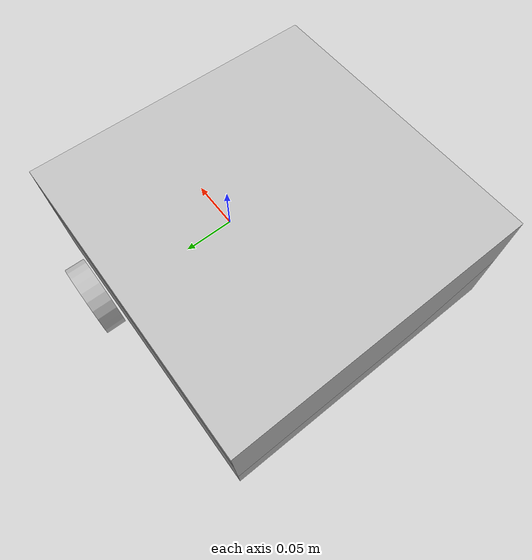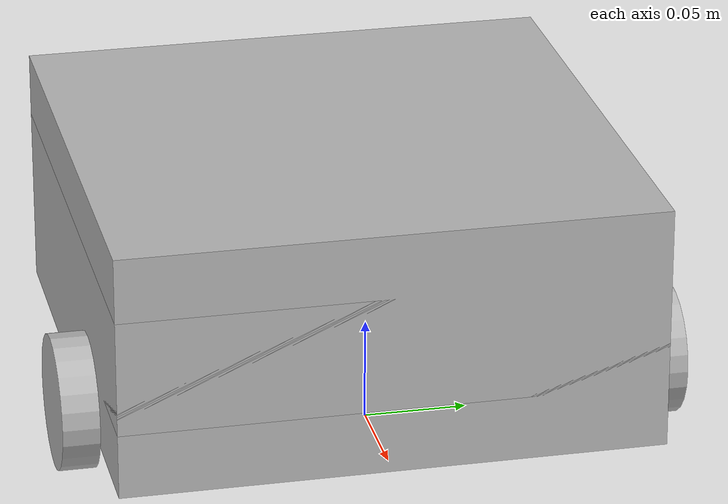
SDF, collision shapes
<?xml version="1.0" ?>
<sdf version="1.5">
  <model name="people">
  <pose>0.0 0.0 0.0 0.0 0.0 0.0</pose>

    <link name="base_footprint"/>
    <link name="base_link">
      <inertial>
        <pose>-0.064 0 0.048 0 0 0</pose>
        <inertia>
          <ixx>4.2111447e-02</ixx>
          <ixy>0</ixy>
          <ixz>0</ixz>
          <iyy>4.2111447e-02</iyy>
          <iyz>0</iyz>
          <izz>7.5254874e-02</izz>
        </inertia>
        <mass>1.3729096e+00</mass>
      </inertial>
      <collision name="base_collision">
        <pose>-0.064 0 0.048 0 0 0</pose>
        <geometry>
          <box>
            <size>0.265 0.265 0.089</size>
          </box>
        </geometry>
      </collision>
      <visual name="base_visual">
        <pose>-0.064 0 0 0 0 1.57</pose>
        <geometry>
          <mesh>
            <uri>model://people/model.dae</uri>
            <scale>0.5 0.5 0.5</scale>
          </mesh>
        </geometry>
      </visual>
    </link>

    <link name="base_link2">
      <inertial>
        <pose>-0.064 0 0.08 0 0 0</pose>
        <inertia>
          <ixx>4.2111447e-02</ixx>
          <ixy>0</ixy>
          <ixz>0</ixz>
          <iyy>4.2111447e-02</iyy>
          <iyz>0</iyz>
          <izz>7.5254874e-02</izz>
        </inertia>
        <mass>1.3729096e+00</mass>
      </inertial>
      <collision name="base2_collision">
        <pose>-0.064 0 0.08 0 0 0</pose>
        <geometry>
          <box>
            <size>0.265 0.265 0.089</size>
          </box>
        </geometry>
      </collision>
      <visual name="base2_visual">
        <pose>-0.064 0 0.08 0 0 0</pose>
        <geometry>
          <mesh>
          </mesh>
        </geometry>
      </visual>
    </link>

    <!-- Wheels -->

    <link name="wheel_left_link">
      <inertial>
        <pose>0.0 0.144 0.023 -1.57 0 0</pose>
        <inertia>
          <ixx>1.1175580e-05</ixx>
          <ixy>-4.2369783e-11</ixy>
          <ixz>-5.9381719e-09</ixz>
          <iyy>1.1192413e-05</iyy>
          <iyz>-1.4400107e-11</iyz>
          <izz>2.0712558e-05</izz>
        </inertia>
        <mass>0.1</mass>
      </inertial>
      <collision name="wheel_left_collision">
        <pose>0.0 0.144 0.023 -1.57 0 0</pose>
        <geometry>
          <cylinder>
            <radius>0.033</radius>
            <length>0.018</length>
          </cylinder>
        </geometry>
        <surface>
          <!-- This friction pamareter don't contain reliable data!! -->
          <friction>
            <ode>
              <mu>100000.0</mu>
              <mu2>100000.0</mu2>
              <fdir1>0 0 0</fdir1>
              <slip1>0.0</slip1>
              <slip2>0.0</slip2>
            </ode>
          </friction>
          <contact>
            <ode>
              <soft_cfm>0</soft_cfm>
              <soft_erp>0.2</soft_erp>
              <kp>1e+5</kp>
              <kd>1</kd>
              <max_vel>0.01</max_vel>
              <min_depth>0.001</min_depth>
            </ode>
          </contact>
        </surface>
      </collision>
      <visual name="wheel_left_visual">
        <pose>0.0 0.144 0.023 0 0 0</pose>
        <geometry>
          <mesh>
          </mesh>
        </geometry>
      </visual>
    </link>

    <link name="wheel_right_link">
      <inertial>
        <pose>0.0 -0.144 0.023 -1.57 0 0</pose>
        <inertia>
          <ixx>1.1175580e-05</ixx>
          <ixy>-4.2369783e-11</ixy>
          <ixz>-5.9381719e-09</ixz>
          <iyy>1.1192413e-05</iyy>
          <iyz>-1.4400107e-11</iyz>
          <izz>2.0712558e-05</izz>
        </inertia>
        <mass>0.1</mass>
      </inertial>
      <collision name="wheel_right_collision">
        <pose>0.0 -0.144 0.023 -1.57 0 0</pose>
        <geometry>
          <cylinder>
            <radius>0.033</radius>
            <length>0.018</length>
          </cylinder>
        </geometry>
        <surface>
          <!-- This friction pamareter don't contain reliable data!! -->
          <friction>
            <ode>
              <mu>100000.0</mu>
              <mu2>100000.0</mu2>
              <fdir1>0 0 0</fdir1>
              <slip1>0.0</slip1>
              <slip2>0.0</slip2>
            </ode>
          </friction>
          <contact>
            <ode>
              <soft_cfm>0</soft_cfm>
              <soft_erp>0.2</soft_erp>
              <kp>1e+5</kp>
              <kd>1</kd>
              <max_vel>0.01</max_vel>
              <min_depth>0.001</min_depth>
            </ode>
          </contact>
        </surface>
      </collision>
      <visual name="wheel_right_visual">
        <pose>0.0 -0.144 0.023 0 0 0</pose>
        <geometry>
          <mesh>
          </mesh>
        </geometry>
      </visual>
    </link>

    <!-- Caster -->

    <link name='caster_back_right_link'>
      <pose>-0.177 -0.064 -0.004 -1.57 0 0</pose>
      <inertial>
        <mass>0.001</mass>
        <inertia>
          <ixx>0.00001</ixx>
          <ixy>0.000</ixy>
          <ixz>0.000</ixz>
          <iyy>0.00001</iyy>
          <iyz>0.000</iyz>
          <izz>0.00001</izz>
        </inertia>
      </inertial>
      <collision name='collision'>
        <geometry>
          <sphere>
            <radius>0.005000</radius>
          </sphere>
        </geometry>
        <surface>
          <contact>
            <ode>
              <soft_cfm>0</soft_cfm>
              <soft_erp>0.2</soft_erp>
              <kp>1e+5</kp>
              <kd>1</kd>
              <max_vel>0.01</max_vel>
              <min_depth>0.001</min_depth>
            </ode>
          </contact>
        </surface>
      </collision>
    </link>

    <link name='caster_back_left_link'>
      <pose>-0.177 0.064 -0.004 -1.57 0 0</pose>
      <inertial>
        <mass>0.001</mass>
        <inertia>
          <ixx>0.00001</ixx>
          <ixy>0.000</ixy>
          <ixz>0.000</ixz>
          <iyy>0.00001</iyy>
          <iyz>0.000</iyz>
          <izz>0.00001</izz>
        </inertia>
      </inertial>
      <collision name='collision'>
        <geometry>
          <sphere>
            <radius>0.005000</radius>
          </sphere>
        </geometry>
        <surface>
          <contact>
            <ode>
              <soft_cfm>0</soft_cfm>
              <soft_erp>0.2</soft_erp>
              <kp>1e+5</kp>
              <kd>1</kd>
              <max_vel>0.01</max_vel>
              <min_depth>0.001</min_depth>
            </ode>
          </contact>
        </surface>
      </collision>
    </link>

    <!-- Joint -->

    <joint name="base_joint" type="fixed">
      <parent>base_footprint</parent>
      <child>base_link</child>
      <pose>0.0 0.0 0.010 0 0 0</pose>
    </joint>

    <joint name="base_joint2" type="fixed">
      <parent>base_link</parent>
      <child>base_link2</child>
      <pose>-0.064 0.0 0.08 0 0 0</pose>
    </joint>

    <joint name="wheel_left_joint" type="revolute">
      <parent>base_link</parent>
      <child>wheel_left_link</child>
      <pose>0.0 0.144 0.023 -1.57 0 0</pose>
      <axis>
        <xyz>0 0 1</xyz>
      </axis>
    </joint>

    <joint name="wheel_right_joint" type="revolute">
      <parent>base_link</parent>
      <child>wheel_right_link</child>
      <pose>0.0 -0.144 0.023 -1.57 0 0</pose>
      <axis>
        <xyz>0 0 1</xyz>
      </axis>
    </joint>

    <joint name='caster_back_right_joint' type='ball'>
      <parent>base_link</parent>
      <child>caster_back_right_link</child>
    </joint>

    <joint name='caster_back_left_joint' type='ball'>
      <parent>base_link</parent>
      <child>caster_back_left_link</child>
    </joint>

    <!-- plugin -->

    <plugin name="people_diff_drive" filename="libgazebo_ros_diff_drive.so">
      <ros>
      </ros>

      <update_rate>30</update_rate>

      <!-- wheels -->
      <left_joint>wheel_left_joint</left_joint>
      <right_joint>wheel_right_joint</right_joint>

      <!-- kinematics -->
      <wheel_separation>0.287</wheel_separation>
      <wheel_diameter>0.066</wheel_diameter>

      <!-- limits -->
      <max_wheel_torque>20</max_wheel_torque>
      <max_wheel_acceleration>1.0</max_wheel_acceleration>

      <command_topic>cmd_vel</command_topic>

      <!-- output -->
      <publish_odom>true</publish_odom>
      <publish_odom_tf>true</publish_odom_tf>
      <publish_wheel_tf>false</publish_wheel_tf>

      <odometry_topic>odom</odometry_topic>
      <odometry_frame>odom</odometry_frame>
      <robot_base_frame>base_footprint</robot_base_frame>
    </plugin>

    <plugin name="people_joint_state" filename="libgazebo_ros_joint_state_publisher.so">
      <ros>
        <remapping>~/out:=joint_states</remapping>
      </ros>
      <update_rate>30</update_rate>
      <joint_name>wheel_left_joint</joint_name>
      <joint_name>wheel_right_joint</joint_name>
    </plugin>

  </model>
</sdf>
